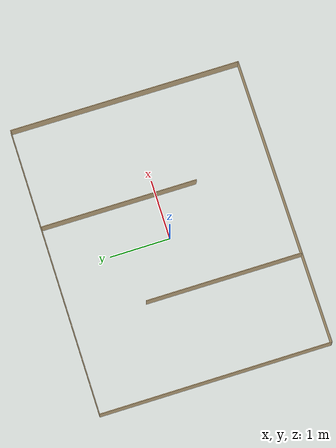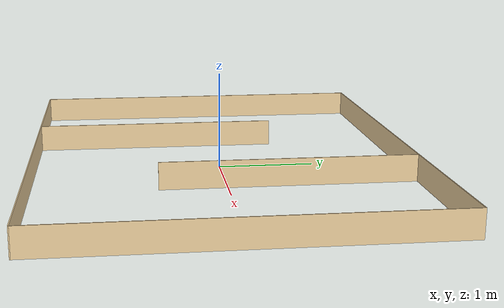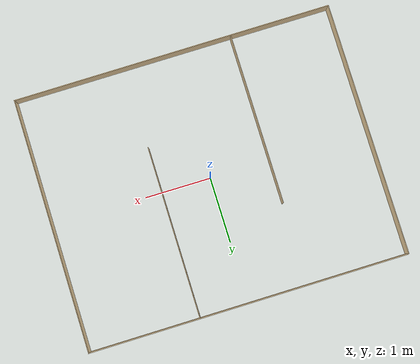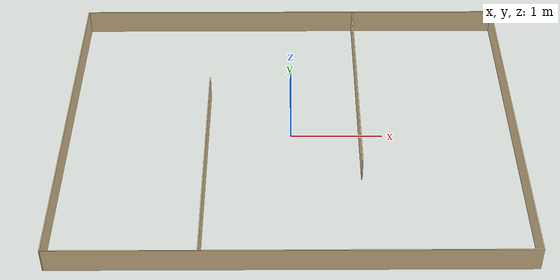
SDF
<?xml version='1.0'?>
<sdf version='1.6'>
  <model name='maze_simple_1'>
    <link name='Wall_0'>
      <pose frame=''>0 1.925 0 0 -0 0</pose>
      <self_collide>0</self_collide>
      <kinematic>0</kinematic>
      <visual name='Wall_0_Visual'>
        <pose frame=''>0 0 0.14 0 -0 0</pose>
        <geometry>
          <box>
            <size>4.86 0.01 0.28</size>
          </box>
        </geometry>
        <material>
          <script>
            <uri>file://media/materials/scripts/gazebo.material</uri>
            <name>Gazebo/Grey</name>
          </script>
          <ambient>0.921569 0.807843 0.615686 1</ambient>
          <diffuse>0.7 0.7 0.7 1</diffuse>
          <specular>0.01 0.01 0.01 1</specular>
          <emissive>0 0 0 1</emissive>
        </material>
        <cast_shadows>1</cast_shadows>
        <transparency>0</transparency>
      </visual>
      <collision name='Wall_0_Collision'>
        <laser_retro>0</laser_retro>
        <max_contacts>10</max_contacts>
        <pose frame=''>0 0 0.14 0 -0 0</pose>
        <geometry>
          <box>
            <size>4.86 0.01 0.28</size>
          </box>
        </geometry>
        <surface>
          <friction>
            <ode>
              <mu>1</mu>
              <mu2>1</mu2>
              <fdir1>0 0 0</fdir1>
              <slip1>0</slip1>
              <slip2>0</slip2>
            </ode>
            <torsional>
              <coefficient>1</coefficient>
              <patch_radius>0</patch_radius>
              <surface_radius>0</surface_radius>
              <use_patch_radius>1</use_patch_radius>
              <ode>
                <slip>0</slip>
              </ode>
            </torsional>
          </friction>
          <bounce>
            <restitution_coefficient>0</restitution_coefficient>
            <threshold>1e+06</threshold>
          </bounce>
          <contact>
            <collide_without_contact>0</collide_without_contact>
            <collide_without_contact_bitmask>1</collide_without_contact_bitmask>
            <collide_bitmask>1</collide_bitmask>
            <ode>
              <soft_cfm>0</soft_cfm>
              <soft_erp>0.2</soft_erp>
              <kp>1e+13</kp>
              <kd>1</kd>
              <max_vel>0.01</max_vel>
              <min_depth>0</min_depth>
            </ode>
            <bullet>
              <split_impulse>1</split_impulse>
              <split_impulse_penetration_threshold>-0.01</split_impulse_penetration_threshold>
              <soft_cfm>0</soft_cfm>
              <soft_erp>0.2</soft_erp>
              <kp>1e+13</kp>
              <kd>1</kd>
            </bullet>
          </contact>
        </surface>
      </collision>
    </link>
    <link name='Wall_1'>
      <pose frame=''>2.425 0 0 0 0 -1.5708</pose>
      <self_collide>0</self_collide>
      <kinematic>0</kinematic>
      <visual name='Wall_1_Visual'>
        <pose frame=''>0 0 0.14 0 -0 0</pose>
        <geometry>
          <box>
            <size>3.86 0.01 0.28</size>
          </box>
        </geometry>
        <material>
          <script>
            <uri>file://media/materials/scripts/gazebo.material</uri>
            <name>Gazebo/Grey</name>
          </script>
          <ambient>0.921569 0.807843 0.615686 1</ambient>
          <diffuse>0.7 0.7 0.7 1</diffuse>
          <specular>0.01 0.01 0.01 1</specular>
          <emissive>0 0 0 1</emissive>
        </material>
        <cast_shadows>1</cast_shadows>
        <transparency>0</transparency>
      </visual>
      <collision name='Wall_1_Collision'>
        <laser_retro>0</laser_retro>
        <max_contacts>10</max_contacts>
        <pose frame=''>0 0 0.14 0 -0 0</pose>
        <geometry>
          <box>
            <size>3.86 0.01 0.28</size>
          </box>
        </geometry>
        <surface>
          <friction>
            <ode>
              <mu>1</mu>
              <mu2>1</mu2>
              <fdir1>0 0 0</fdir1>
              <slip1>0</slip1>
              <slip2>0</slip2>
            </ode>
            <torsional>
              <coefficient>1</coefficient>
              <patch_radius>0</patch_radius>
              <surface_radius>0</surface_radius>
              <use_patch_radius>1</use_patch_radius>
              <ode>
                <slip>0</slip>
              </ode>
            </torsional>
          </friction>
          <bounce>
            <restitution_coefficient>0</restitution_coefficient>
            <threshold>1e+06</threshold>
          </bounce>
          <contact>
            <collide_without_contact>0</collide_without_contact>
            <collide_without_contact_bitmask>1</collide_without_contact_bitmask>
            <collide_bitmask>1</collide_bitmask>
            <ode>
              <soft_cfm>0</soft_cfm>
              <soft_erp>0.2</soft_erp>
              <kp>1e+13</kp>
              <kd>1</kd>
              <max_vel>0.01</max_vel>
              <min_depth>0</min_depth>
            </ode>
            <bullet>
              <split_impulse>1</split_impulse>
              <split_impulse_penetration_threshold>-0.01</split_impulse_penetration_threshold>
              <soft_cfm>0</soft_cfm>
              <soft_erp>0.2</soft_erp>
              <kp>1e+13</kp>
              <kd>1</kd>
            </bullet>
          </contact>
        </surface>
      </collision>
    </link>
    <link name='Wall_2'>
      <pose frame=''>0 -1.925 0 0 -0 3.14159</pose>
      <self_collide>0</self_collide>
      <kinematic>0</kinematic>
      <visual name='Wall_2_Visual'>
        <pose frame=''>0 0 0.14 0 -0 0</pose>
        <geometry>
          <box>
            <size>4.86 0.01 0.28</size>
          </box>
        </geometry>
        <material>
          <script>
            <uri>file://media/materials/scripts/gazebo.material</uri>
            <name>Gazebo/Grey</name>
          </script>
          <ambient>0.921569 0.807843 0.615686 1</ambient>
          <diffuse>0.7 0.7 0.7 1</diffuse>
          <specular>0.01 0.01 0.01 1</specular>
          <emissive>0 0 0 1</emissive>
        </material>
        <cast_shadows>1</cast_shadows>
        <transparency>0</transparency>
      </visual>
      <collision name='Wall_2_Collision'>
        <laser_retro>0</laser_retro>
        <max_contacts>10</max_contacts>
        <pose frame=''>0 0 0.14 0 -0 0</pose>
        <geometry>
          <box>
            <size>4.86 0.01 0.28</size>
          </box>
        </geometry>
        <surface>
          <friction>
            <ode>
              <mu>1</mu>
              <mu2>1</mu2>
              <fdir1>0 0 0</fdir1>
              <slip1>0</slip1>
              <slip2>0</slip2>
            </ode>
            <torsional>
              <coefficient>1</coefficient>
              <patch_radius>0</patch_radius>
              <surface_radius>0</surface_radius>
              <use_patch_radius>1</use_patch_radius>
              <ode>
                <slip>0</slip>
              </ode>
            </torsional>
          </friction>
          <bounce>
            <restitution_coefficient>0</restitution_coefficient>
            <threshold>1e+06</threshold>
          </bounce>
          <contact>
            <collide_without_contact>0</collide_without_contact>
            <collide_without_contact_bitmask>1</collide_without_contact_bitmask>
            <collide_bitmask>1</collide_bitmask>
            <ode>
              <soft_cfm>0</soft_cfm>
              <soft_erp>0.2</soft_erp>
              <kp>1e+13</kp>
              <kd>1</kd>
              <max_vel>0.01</max_vel>
              <min_depth>0</min_depth>
            </ode>
            <bullet>
              <split_impulse>1</split_impulse>
              <split_impulse_penetration_threshold>-0.01</split_impulse_penetration_threshold>
              <soft_cfm>0</soft_cfm>
              <soft_erp>0.2</soft_erp>
              <kp>1e+13</kp>
              <kd>1</kd>
            </bullet>
          </contact>
        </surface>
      </collision>
    </link>
    <link name='Wall_3'>
      <pose frame=''>-2.425 0 0 0 -0 1.5708</pose>
      <self_collide>0</self_collide>
      <kinematic>0</kinematic>
      <visual name='Wall_3_Visual'>
        <pose frame=''>0 0 0.14 0 -0 0</pose>
        <geometry>
          <box>
            <size>3.86 0.01 0.28</size>
          </box>
        </geometry>
        <material>
          <script>
            <uri>file://media/materials/scripts/gazebo.material</uri>
            <name>Gazebo/Grey</name>
          </script>
          <ambient>0.921569 0.807843 0.615686 1</ambient>
          <diffuse>0.7 0.7 0.7 1</diffuse>
          <specular>0.01 0.01 0.01 1</specular>
          <emissive>0 0 0 1</emissive>
        </material>
        <cast_shadows>1</cast_shadows>
        <transparency>0</transparency>
      </visual>
      <collision name='Wall_3_Collision'>
        <laser_retro>0</laser_retro>
        <max_contacts>10</max_contacts>
        <pose frame=''>0 0 0.14 0 -0 0</pose>
        <geometry>
          <box>
            <size>3.86 0.01 0.28</size>
          </box>
        </geometry>
        <surface>
          <friction>
            <ode>
              <mu>1</mu>
              <mu2>1</mu2>
              <fdir1>0 0 0</fdir1>
              <slip1>0</slip1>
              <slip2>0</slip2>
            </ode>
            <torsional>
              <coefficient>1</coefficient>
              <patch_radius>0</patch_radius>
              <surface_radius>0</surface_radius>
              <use_patch_radius>1</use_patch_radius>
              <ode>
                <slip>0</slip>
              </ode>
            </torsional>
          </friction>
          <bounce>
            <restitution_coefficient>0</restitution_coefficient>
            <threshold>1e+06</threshold>
          </bounce>
          <contact>
            <collide_without_contact>0</collide_without_contact>
            <collide_without_contact_bitmask>1</collide_without_contact_bitmask>
            <collide_bitmask>1</collide_bitmask>
            <ode>
              <soft_cfm>0</soft_cfm>
              <soft_erp>0.2</soft_erp>
              <kp>1e+13</kp>
              <kd>1</kd>
              <max_vel>0.01</max_vel>
              <min_depth>0</min_depth>
            </ode>
            <bullet>
              <split_impulse>1</split_impulse>
              <split_impulse_penetration_threshold>-0.01</split_impulse_penetration_threshold>
              <soft_cfm>0</soft_cfm>
              <soft_erp>0.2</soft_erp>
              <kp>1e+13</kp>
              <kd>1</kd>
            </bullet>
          </contact>
        </surface>
      </collision>
    </link>
    <link name='Wall_5'>
      <pose frame=''>-0.906 -0.621954 0 0 -0 1.5708</pose>
      <self_collide>0</self_collide>
      <kinematic>0</kinematic>
      <visual name='Wall_5_Visual'>
        <pose frame=''>0 0 0.14 0 -0 0</pose>
        <geometry>
          <box>
            <size>2.60977 0.01 0.28</size>
          </box>
        </geometry>
        <material>
          <script>
            <uri>file://media/materials/scripts/gazebo.material</uri>
            <name>Gazebo/Grey</name>
          </script>
          <ambient>0.921569 0.807843 0.615686 1</ambient>
          <diffuse>0.7 0.7 0.7 1</diffuse>
          <specular>0.01 0.01 0.01 1</specular>
          <emissive>0 0 0 1</emissive>
        </material>
        <cast_shadows>1</cast_shadows>
        <transparency>0</transparency>
      </visual>
      <collision name='Wall_5_Collision'>
        <laser_retro>0</laser_retro>
        <max_contacts>10</max_contacts>
        <pose frame=''>0 0 0.14 0 -0 0</pose>
        <geometry>
          <box>
            <size>2.60977 0.01 0.28</size>
          </box>
        </geometry>
        <surface>
          <friction>
            <ode>
              <mu>1</mu>
              <mu2>1</mu2>
              <fdir1>0 0 0</fdir1>
              <slip1>0</slip1>
              <slip2>0</slip2>
            </ode>
            <torsional>
              <coefficient>1</coefficient>
              <patch_radius>0</patch_radius>
              <surface_radius>0</surface_radius>
              <use_patch_radius>1</use_patch_radius>
              <ode>
                <slip>0</slip>
              </ode>
            </torsional>
          </friction>
          <bounce>
            <restitution_coefficient>0</restitution_coefficient>
            <threshold>1e+06</threshold>
          </bounce>
          <contact>
            <collide_without_contact>0</collide_without_contact>
            <collide_without_contact_bitmask>1</collide_without_contact_bitmask>
            <collide_bitmask>1</collide_bitmask>
            <ode>
              <soft_cfm>0</soft_cfm>
              <soft_erp>0.2</soft_erp>
              <kp>1e+13</kp>
              <kd>1</kd>
              <max_vel>0.01</max_vel>
              <min_depth>0</min_depth>
            </ode>
            <bullet>
              <split_impulse>1</split_impulse>
              <split_impulse_penetration_threshold>-0.01</split_impulse_penetration_threshold>
              <soft_cfm>0</soft_cfm>
              <soft_erp>0.2</soft_erp>
              <kp>1e+13</kp>
              <kd>1</kd>
            </bullet>
          </contact>
        </surface>
      </collision>
    </link>
    <link name='Wall_7'>
      <pose frame=''>0.746 0.622969 0 0 0 -1.5708</pose>
      <self_collide>0</self_collide>
      <kinematic>0</kinematic>
      <visual name='Wall_7_Visual'>
        <pose frame=''>0 0 0.14 0 -0 0</pose>
        <geometry>
          <box>
            <size>2.6101 0.01 0.28</size>
          </box>
        </geometry>
        <material>
          <script>
            <uri>file://media/materials/scripts/gazebo.material</uri>
            <name>Gazebo/Grey</name>
          </script>
          <ambient>0.921569 0.807843 0.615686 1</ambient>
          <diffuse>0.7 0.7 0.7 1</diffuse>
          <specular>0.01 0.01 0.01 1</specular>
          <emissive>0 0 0 1</emissive>
        </material>
        <cast_shadows>1</cast_shadows>
        <transparency>0</transparency>
      </visual>
      <collision name='Wall_7_Collision'>
        <laser_retro>0</laser_retro>
        <max_contacts>10</max_contacts>
        <pose frame=''>0 0 0.14 0 -0 0</pose>
        <geometry>
          <box>
            <size>2.6101 0.01 0.28</size>
          </box>
        </geometry>
        <surface>
          <friction>
            <ode>
              <mu>1</mu>
              <mu2>1</mu2>
              <fdir1>0 0 0</fdir1>
              <slip1>0</slip1>
              <slip2>0</slip2>
            </ode>
            <torsional>
              <coefficient>1</coefficient>
              <patch_radius>0</patch_radius>
              <surface_radius>0</surface_radius>
              <use_patch_radius>1</use_patch_radius>
              <ode>
                <slip>0</slip>
              </ode>
            </torsional>
          </friction>
          <bounce>
            <restitution_coefficient>0</restitution_coefficient>
            <threshold>1e+06</threshold>
          </bounce>
          <contact>
            <collide_without_contact>0</collide_without_contact>
            <collide_without_contact_bitmask>1</collide_without_contact_bitmask>
            <collide_bitmask>1</collide_bitmask>
            <ode>
              <soft_cfm>0</soft_cfm>
              <soft_erp>0.2</soft_erp>
              <kp>1e+13</kp>
              <kd>1</kd>
              <max_vel>0.01</max_vel>
              <min_depth>0</min_depth>
            </ode>
            <bullet>
              <split_impulse>1</split_impulse>
              <split_impulse_penetration_threshold>-0.01</split_impulse_penetration_threshold>
              <soft_cfm>0</soft_cfm>
              <soft_erp>0.2</soft_erp>
              <kp>1e+13</kp>
              <kd>1</kd>
            </bullet>
          </contact>
        </surface>
      </collision>
    </link>
    <static>1</static>
    <allow_auto_disable>1</allow_auto_disable>
  </model>
</sdf>
